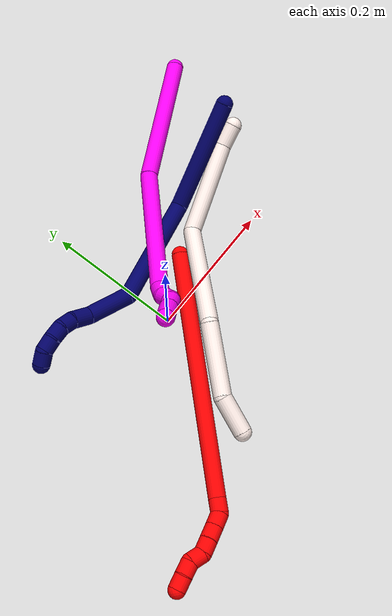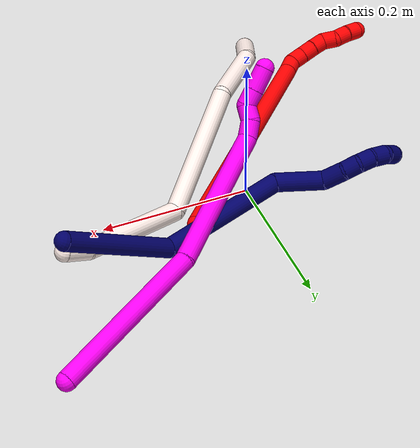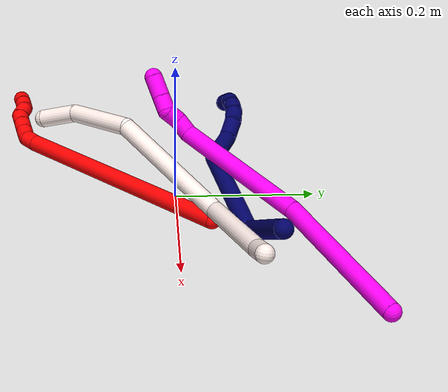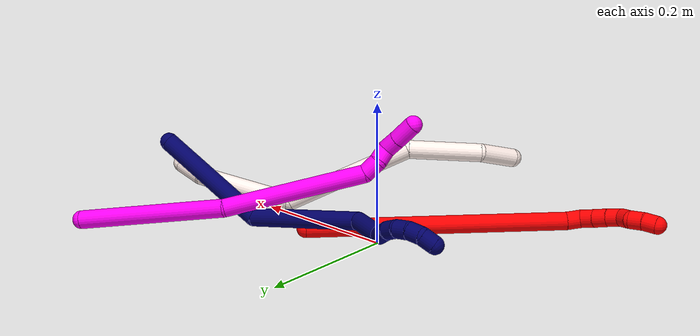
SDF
<sdf version="1.7">
 <world name="default">
  <model name="2">
   <static>0</static>
   <link name="2">
    <collision name="collision-cylinder-e_1_1_4">
     <pose>-0.006723 -0.006391 0.179255 0.035641 -0.037463 -0.000668</pose>
     <geometry><cylinder><radius>0.0125</radius><length>0.358989</length></cylinder></geometry>
     <surface>
      <friction><ode><mu>1.16</mu><mu2>1.16</mu2><slip1>0</slip1><slip2>0</slip2></ode></friction>
      <contact><ode><kp>1e+06</kp><kd>1</kd><max_vel>0</max_vel><min_depth>0.001</min_depth></ode></contact>
     </surface>
    </collision>
    <visual name="visual-cylinder-e_1_1_4">
     <pose>-0.006723 -0.006391 0.179255 0.035641 -0.037463 -0.000668</pose>
     <geometry><cylinder><radius>0.0125</radius><length>0.358989</length></cylinder></geometry>
     <material><ambient>1 0 0 1</ambient></material>
    </visual>
    <collision name="collision-cylinder-e_2_4_5">
     <pose>-0.015063 -0.012864 0.368669 0.007967 -0.157913 -0.00063</pose>
     <geometry><cylinder><radius>0.0125</radius><length>0.020577</length></cylinder></geometry>
     <surface>
      <friction><ode><mu>1.16</mu><mu2>1.16</mu2><slip1>0</slip1><slip2>0</slip2></ode></friction>
      <contact><ode><kp>1e+06</kp><kd>1</kd><max_vel>0</max_vel><min_depth>0.001</min_depth></ode></contact>
     </surface>
    </collision>
    <visual name="visual-cylinder-e_2_4_5">
     <pose>-0.015063 -0.012864 0.368669 0.007967 -0.157913 -0.00063</pose>
     <geometry><cylinder><radius>0.0125</radius><length>0.020577</length></cylinder></geometry>
     <material><ambient>1 0 0 1</ambient></material>
    </visual>
    <collision name="collision-cylinder-e_3_5_6">
     <pose>-0.019873 -0.017906 0.386927 0.549661 -0.324202 -0.092158</pose>
     <geometry><cylinder><radius>0.0125</radius><length>0.020036</length></cylinder></geometry>
     <surface>
      <friction><ode><mu>1.16</mu><mu2>1.16</mu2><slip1>0</slip1><slip2>0</slip2></ode></friction>
      <contact><ode><kp>1e+06</kp><kd>1</kd><max_vel>0</max_vel><min_depth>0.001</min_depth></ode></contact>
     </surface>
    </collision>
    <visual name="visual-cylinder-e_3_5_6">
     <pose>-0.019873 -0.017906 0.386927 0.549661 -0.324202 -0.092158</pose>
     <geometry><cylinder><radius>0.0125</radius><length>0.020036</length></cylinder></geometry>
     <material><ambient>1 0 0 1</ambient></material>
    </visual>
    <collision name="collision-cylinder-e_4_6_7">
     <pose>-0.026626 -0.027901 0.403121 0.556305 -0.35753 -0.103105</pose>
     <geometry><cylinder><radius>0.0125</radius><length>0.020355</length></cylinder></geometry>
     <surface>
      <friction><ode><mu>1.16</mu><mu2>1.16</mu2><slip1>0</slip1><slip2>0</slip2></ode></friction>
      <contact><ode><kp>1e+06</kp><kd>1</kd><max_vel>0</max_vel><min_depth>0.001</min_depth></ode></contact>
     </surface>
    </collision>
    <visual name="visual-cylinder-e_4_6_7">
     <pose>-0.026626 -0.027901 0.403121 0.556305 -0.35753 -0.103105</pose>
     <geometry><cylinder><radius>0.0125</radius><length>0.020355</length></cylinder></geometry>
     <material><ambient>1 0 0 1</ambient></material>
    </visual>
    <collision name="collision-cylinder-e_5_7_8">
     <pose>-0.033214 -0.038044 0.419276 0.565014 -0.307133 -0.089799</pose>
     <geometry><cylinder><radius>0.0125</radius><length>0.02002</length></cylinder></geometry>
     <surface>
      <friction><ode><mu>1.16</mu><mu2>1.16</mu2><slip1>0</slip1><slip2>0</slip2></ode></friction>
      <contact><ode><kp>1e+06</kp><kd>1</kd><max_vel>0</max_vel><min_depth>0.001</min_depth></ode></contact>
     </surface>
    </collision>
    <visual name="visual-cylinder-e_5_7_8">
     <pose>-0.033214 -0.038044 0.419276 0.565014 -0.307133 -0.089799</pose>
     <geometry><cylinder><radius>0.0125</radius><length>0.02002</length></cylinder></geometry>
     <material><ambient>1 0 0 1</ambient></material>
    </visual>
    <collision name="collision-cylinder-e_6_8_9">
     <pose>-0.039876 -0.051731 0.430984 1.16855 -0.371834 -0.247494</pose>
     <geometry><cylinder><radius>0.0125</radius><length>0.020012</length></cylinder></geometry>
     <surface>
      <friction><ode><mu>1.16</mu><mu2>1.16</mu2><slip1>0</slip1><slip2>0</slip2></ode></friction>
      <contact><ode><kp>1e+06</kp><kd>1</kd><max_vel>0</max_vel><min_depth>0.001</min_depth></ode></contact>
     </surface>
    </collision>
    <visual name="visual-cylinder-e_6_8_9">
     <pose>-0.039876 -0.051731 0.430984 1.16855 -0.371834 -0.247494</pose>
     <geometry><cylinder><radius>0.0125</radius><length>0.020012</length></cylinder></geometry>
     <material><ambient>1 0 0 1</ambient></material>
    </visual>
    <collision name="collision-cylinder-e_7_9_10">
     <pose>-0.045433 -0.066053 0.442594 0.624996 -0.193368 -0.062649</pose>
     <geometry><cylinder><radius>0.0125</radius><length>0.020004</length></cylinder></geometry>
     <surface>
      <friction><ode><mu>1.16</mu><mu2>1.16</mu2><slip1>0</slip1><slip2>0</slip2></ode></friction>
      <contact><ode><kp>1e+06</kp><kd>1</kd><max_vel>0</max_vel><min_depth>0.001</min_depth></ode></contact>
     </surface>
    </collision>
    <visual name="visual-cylinder-e_7_9_10">
     <pose>-0.045433 -0.066053 0.442594 0.624996 -0.193368 -0.062649</pose>
     <geometry><cylinder><radius>0.0125</radius><length>0.020004</length></cylinder></geometry>
     <material><ambient>1 0 0 1</ambient></material>
    </visual>
    <collision name="collision-cylinder-e_8_10_2">
     <pose>-0.047848 -0.077702 0.458612 0.632527 -0.04931 -0.01614</pose>
     <geometry><cylinder><radius>0.0125</radius><length>0.020006</length></cylinder></geometry>
     <surface>
      <friction><ode><mu>1.16</mu><mu2>1.16</mu2><slip1>0</slip1><slip2>0</slip2></ode></friction>
      <contact><ode><kp>1e+06</kp><kd>1</kd><max_vel>0</max_vel><min_depth>0.001</min_depth></ode></contact>
     </surface>
    </collision>
    <visual name="visual-cylinder-e_8_10_2">
     <pose>-0.047848 -0.077702 0.458612 0.632527 -0.04931 -0.01614</pose>
     <geometry><cylinder><radius>0.0125</radius><length>0.020006</length></cylinder></geometry>
     <material><ambient>1 0 0 1</ambient></material>
    </visual>
    <collision name="collision-sphere-2">
     <pose>-0.048341 -0.083609 0.46667 0 -0 0</pose>
     <geometry><sphere><radius>0.0125</radius></sphere></geometry>
     <surface>
      <friction><ode><mu>1.16</mu><mu2>1.16</mu2><slip1>0</slip1><slip2>0</slip2></ode></friction>
      <contact><ode><kp>1e+06</kp><kd>1</kd><max_vel>0</max_vel><min_depth>0.001</min_depth></ode></contact>
     </surface>
    </collision>
    <visual name="visual-sphere-2">
     <pose>-0.048341 -0.083609 0.46667 0 -0 0</pose>
     <geometry><sphere><radius>0.0125</radius></sphere></geometry>
     <material><ambient>1 0 0 1</ambient></material>
    </visual>
    <collision name="collision-sphere-10">
     <pose>-0.047355 -0.071796 0.450554 0 -0 0</pose>
     <geometry><sphere><radius>0.0125</radius></sphere></geometry>
     <surface>
      <friction><ode><mu>1.16</mu><mu2>1.16</mu2><slip1>0</slip1><slip2>0</slip2></ode></friction>
      <contact><ode><kp>1e+06</kp><kd>1</kd><max_vel>0</max_vel><min_depth>0.001</min_depth></ode></contact>
     </surface>
    </collision>
    <visual name="visual-sphere-10">
     <pose>-0.047355 -0.071796 0.450554 0 -0 0</pose>
     <geometry><sphere><radius>0.0125</radius></sphere></geometry>
     <material><ambient>1 0 0 1</ambient></material>
    </visual>
    <collision name="collision-sphere-9">
     <pose>-0.043511 -0.060309 0.434634 0 -0 0</pose>
     <geometry><sphere><radius>0.0125</radius></sphere></geometry>
     <surface>
      <friction><ode><mu>1.16</mu><mu2>1.16</mu2><slip1>0</slip1><slip2>0</slip2></ode></friction>
      <contact><ode><kp>1e+06</kp><kd>1</kd><max_vel>0</max_vel><min_depth>0.001</min_depth></ode></contact>
     </surface>
    </collision>
    <visual name="visual-sphere-9">
     <pose>-0.043511 -0.060309 0.434634 0 -0 0</pose>
     <geometry><sphere><radius>0.0125</radius></sphere></geometry>
     <material><ambient>1 0 0 1</ambient></material>
    </visual>
    <collision name="collision-sphere-4">
     <pose>-0.013445 -0.012783 0.358509 0 -0 0</pose>
     <geometry><sphere><radius>0.0125</radius></sphere></geometry>
     <surface>
      <friction><ode><mu>1.16</mu><mu2>1.16</mu2><slip1>0</slip1><slip2>0</slip2></ode></friction>
      <contact><ode><kp>1e+06</kp><kd>1</kd><max_vel>0</max_vel><min_depth>0.001</min_depth></ode></contact>
     </surface>
    </collision>
    <visual name="visual-sphere-4">
     <pose>-0.013445 -0.012783 0.358509 0 -0 0</pose>
     <geometry><sphere><radius>0.0125</radius></sphere></geometry>
     <material><ambient>1 0 0 1</ambient></material>
    </visual>
    <collision name="collision-sphere-1">
     <geometry><sphere><radius>0.0125</radius></sphere></geometry>
     <surface>
      <friction><ode><mu>1.16</mu><mu2>1.16</mu2><slip1>0</slip1><slip2>0</slip2></ode></friction>
      <contact><ode><kp>1e+06</kp><kd>1</kd><max_vel>0</max_vel><min_depth>0.001</min_depth></ode></contact>
     </surface>
    </collision>
    <visual name="visual-sphere-1">
     <geometry><sphere><radius>0.0125</radius></sphere></geometry>
     <material><ambient>1 0 0 1</ambient></material>
    </visual>
    <collision name="collision-sphere-8">
     <pose>-0.03624 -0.043153 0.427335 0 -0 0</pose>
     <geometry><sphere><radius>0.0125</radius></sphere></geometry>
     <surface>
      <friction><ode><mu>1.16</mu><mu2>1.16</mu2><slip1>0</slip1><slip2>0</slip2></ode></friction>
      <contact><ode><kp>1e+06</kp><kd>1</kd><max_vel>0</max_vel><min_depth>0.001</min_depth></ode></contact>
     </surface>
    </collision>
    <visual name="visual-sphere-8">
     <pose>-0.03624 -0.043153 0.427335 0 -0 0</pose>
     <geometry><sphere><radius>0.0125</radius></sphere></geometry>
     <material><ambient>1 0 0 1</ambient></material>
    </visual>
    <collision name="collision-sphere-5">
     <pose>-0.016681 -0.012945 0.378829 0 -0 0</pose>
     <geometry><sphere><radius>0.0125</radius></sphere></geometry>
     <surface>
      <friction><ode><mu>1.16</mu><mu2>1.16</mu2><slip1>0</slip1><slip2>0</slip2></ode></friction>
      <contact><ode><kp>1e+06</kp><kd>1</kd><max_vel>0</max_vel><min_depth>0.001</min_depth></ode></contact>
     </surface>
    </collision>
    <visual name="visual-sphere-5">
     <pose>-0.016681 -0.012945 0.378829 0 -0 0</pose>
     <geometry><sphere><radius>0.0125</radius></sphere></geometry>
     <material><ambient>1 0 0 1</ambient></material>
    </visual>
    <collision name="collision-sphere-6">
     <pose>-0.023064 -0.022866 0.395024 0 -0 0</pose>
     <geometry><sphere><radius>0.0125</radius></sphere></geometry>
     <surface>
      <friction><ode><mu>1.16</mu><mu2>1.16</mu2><slip1>0</slip1><slip2>0</slip2></ode></friction>
      <contact><ode><kp>1e+06</kp><kd>1</kd><max_vel>0</max_vel><min_depth>0.001</min_depth></ode></contact>
     </surface>
    </collision>
    <visual name="visual-sphere-6">
     <pose>-0.023064 -0.022866 0.395024 0 -0 0</pose>
     <geometry><sphere><radius>0.0125</radius></sphere></geometry>
     <material><ambient>1 0 0 1</ambient></material>
    </visual>
    <collision name="collision-sphere-7">
     <pose>-0.030187 -0.032935 0.411217 0 -0 0</pose>
     <geometry><sphere><radius>0.0125</radius></sphere></geometry>
     <surface>
      <friction><ode><mu>1.16</mu><mu2>1.16</mu2><slip1>0</slip1><slip2>0</slip2></ode></friction>
      <contact><ode><kp>1e+06</kp><kd>1</kd><max_vel>0</max_vel><min_depth>0.001</min_depth></ode></contact>
     </surface>
    </collision>
    <visual name="visual-sphere-7">
     <pose>-0.030187 -0.032935 0.411217 0 -0 0</pose>
     <geometry><sphere><radius>0.0125</radius></sphere></geometry>
     <material><ambient>1 0 0 1</ambient></material>
    </visual>
    <inertial>
     <pose>-0.013985 -0.016317 0.245885 0 -0 0</pose>
     <mass>0.5</mass>
     <inertia>
      <ixx>0.003869</ixx>
      <ixy>0</ixy>
      <ixz>0</ixz>
      <iyy>0.003865</iyy>
      <iyz>0</iyz>
      <izz>0.000327</izz>
     </inertia>
    </inertial>
   </link>
   <pose>0.088803 0.046941 0.011486 1.74738 1.39472 -0.546762</pose>
  </model>
  <model name="7">
   <static>0</static>
   <link name="7">
    <collision name="collision-cylinder-e_1_1_4">
     <pose>-0.00225 -0.014789 -0.079566 2.95782 -0.027795 -0.299409</pose>
     <geometry><cylinder><radius>0.0125</radius><length>0.16192</length></cylinder></geometry>
     <surface>
      <friction><ode><mu>1.16</mu><mu2>1.16</mu2><slip1>0</slip1><slip2>0</slip2></ode></friction>
      <contact><ode><kp>1e+06</kp><kd>1</kd><max_vel>0</max_vel><min_depth>0.001</min_depth></ode></contact>
     </surface>
    </collision>
    <visual name="visual-cylinder-e_1_1_4">
     <pose>-0.00225 -0.014789 -0.079566 2.95782 -0.027795 -0.299409</pose>
     <geometry><cylinder><radius>0.0125</radius><length>0.16192</length></cylinder></geometry>
     <material><ambient>0.003922 0 0.403922 1</ambient></material>
    </visual>
    <collision name="collision-cylinder-e_2_4_5">
     <pose>-0.055432 -0.060682 -0.216453 2.64442 -0.663031 -1.87078</pose>
     <geometry><cylinder><radius>0.0125</radius><length>0.165497</length></cylinder></geometry>
     <surface>
      <friction><ode><mu>1.16</mu><mu2>1.16</mu2><slip1>0</slip1><slip2>0</slip2></ode></friction>
      <contact><ode><kp>1e+06</kp><kd>1</kd><max_vel>0</max_vel><min_depth>0.001</min_depth></ode></contact>
     </surface>
    </collision>
    <visual name="visual-cylinder-e_2_4_5">
     <pose>-0.055432 -0.060682 -0.216453 2.64442 -0.663031 -1.87078</pose>
     <geometry><cylinder><radius>0.0125</radius><length>0.165497</length></cylinder></geometry>
     <material><ambient>0.003922 0 0.403922 1</ambient></material>
    </visual>
    <collision name="collision-cylinder-e_3_5_6">
     <pose>-0.126393 -0.084674 -0.296724 -2.84105 -0.694863 2.34953</pose>
     <geometry><cylinder><radius>0.0125</radius><length>0.06256</length></cylinder></geometry>
     <surface>
      <friction><ode><mu>1.16</mu><mu2>1.16</mu2><slip1>0</slip1><slip2>0</slip2></ode></friction>
      <contact><ode><kp>1e+06</kp><kd>1</kd><max_vel>0</max_vel><min_depth>0.001</min_depth></ode></contact>
     </surface>
    </collision>
    <visual name="visual-cylinder-e_3_5_6">
     <pose>-0.126393 -0.084674 -0.296724 -2.84105 -0.694863 2.34953</pose>
     <geometry><cylinder><radius>0.0125</radius><length>0.06256</length></cylinder></geometry>
     <material><ambient>0.003922 0 0.403922 1</ambient></material>
    </visual>
    <collision name="collision-cylinder-e_4_6_7">
     <pose>-0.160407 -0.075746 -0.324678 -2.79361 -1.20719 2.64233</pose>
     <geometry><cylinder><radius>0.0125</radius><length>0.029928</length></cylinder></geometry>
     <surface>
      <friction><ode><mu>1.16</mu><mu2>1.16</mu2><slip1>0</slip1><slip2>0</slip2></ode></friction>
      <contact><ode><kp>1e+06</kp><kd>1</kd><max_vel>0</max_vel><min_depth>0.001</min_depth></ode></contact>
     </surface>
    </collision>
    <visual name="visual-cylinder-e_4_6_7">
     <pose>-0.160407 -0.075746 -0.324678 -2.79361 -1.20719 2.64233</pose>
     <geometry><cylinder><radius>0.0125</radius><length>0.029928</length></cylinder></geometry>
     <material><ambient>0.003922 0 0.403922 1</ambient></material>
    </visual>
    <collision name="collision-cylinder-e_5_7_8">
     <pose>-0.182927 -0.074653 -0.334859 3.00299 -1.02119 -2.89502</pose>
     <geometry><cylinder><radius>0.0125</radius><length>0.020018</length></cylinder></geometry>
     <surface>
      <friction><ode><mu>1.16</mu><mu2>1.16</mu2><slip1>0</slip1><slip2>0</slip2></ode></friction>
      <contact><ode><kp>1e+06</kp><kd>1</kd><max_vel>0</max_vel><min_depth>0.001</min_depth></ode></contact>
     </surface>
    </collision>
    <visual name="visual-cylinder-e_5_7_8">
     <pose>-0.182927 -0.074653 -0.334859 3.00299 -1.02119 -2.89502</pose>
     <geometry><cylinder><radius>0.0125</radius><length>0.020018</length></cylinder></geometry>
     <material><ambient>0.003922 0 0.403922 1</ambient></material>
    </visual>
    <collision name="collision-cylinder-e_6_8_9">
     <pose>-0.197829 -0.077701 -0.347434 2.83697 -0.687457 -2.33134</pose>
     <geometry><cylinder><radius>0.0125</radius><length>0.020067</length></cylinder></geometry>
     <surface>
      <friction><ode><mu>1.16</mu><mu2>1.16</mu2><slip1>0</slip1><slip2>0</slip2></ode></friction>
      <contact><ode><kp>1e+06</kp><kd>1</kd><max_vel>0</max_vel><min_depth>0.001</min_depth></ode></contact>
     </surface>
    </collision>
    <visual name="visual-cylinder-e_6_8_9">
     <pose>-0.197829 -0.077701 -0.347434 2.83697 -0.687457 -2.33134</pose>
     <geometry><cylinder><radius>0.0125</radius><length>0.020067</length></cylinder></geometry>
     <material><ambient>0.003922 0 0.403922 1</ambient></material>
    </visual>
    <collision name="collision-cylinder-e_7_9_10">
     <pose>-0.208468 -0.082172 -0.363619 2.90215 -0.441237 -2.15692</pose>
     <geometry><cylinder><radius>0.0125</radius><length>0.020006</length></cylinder></geometry>
     <surface>
      <friction><ode><mu>1.16</mu><mu2>1.16</mu2><slip1>0</slip1><slip2>0</slip2></ode></friction>
      <contact><ode><kp>1e+06</kp><kd>1</kd><max_vel>0</max_vel><min_depth>0.001</min_depth></ode></contact>
     </surface>
    </collision>
    <visual name="visual-cylinder-e_7_9_10">
     <pose>-0.208468 -0.082172 -0.363619 2.90215 -0.441237 -2.15692</pose>
     <geometry><cylinder><radius>0.0125</radius><length>0.020006</length></cylinder></geometry>
     <material><ambient>0.003922 0 0.403922 1</ambient></material>
    </visual>
    <collision name="collision-cylinder-e_8_10_2">
     <pose>-0.212341 -0.087787 -0.381778 2.78701 0.039926 0.221953</pose>
     <geometry><cylinder><radius>0.0125</radius><length>0.020004</length></cylinder></geometry>
     <surface>
      <friction><ode><mu>1.16</mu><mu2>1.16</mu2><slip1>0</slip1><slip2>0</slip2></ode></friction>
      <contact><ode><kp>1e+06</kp><kd>1</kd><max_vel>0</max_vel><min_depth>0.001</min_depth></ode></contact>
     </surface>
    </collision>
    <visual name="visual-cylinder-e_8_10_2">
     <pose>-0.212341 -0.087787 -0.381778 2.78701 0.039926 0.221953</pose>
     <geometry><cylinder><radius>0.0125</radius><length>0.020004</length></cylinder></geometry>
     <material><ambient>0.003922 0 0.403922 1</ambient></material>
    </visual>
    <collision name="collision-sphere-2">
     <pose>-0.211942 -0.091257 -0.391151 0 -0 0</pose>
     <geometry><sphere><radius>0.0125</radius></sphere></geometry>
     <surface>
      <friction><ode><mu>1.16</mu><mu2>1.16</mu2><slip1>0</slip1><slip2>0</slip2></ode></friction>
      <contact><ode><kp>1e+06</kp><kd>1</kd><max_vel>0</max_vel><min_depth>0.001</min_depth></ode></contact>
     </surface>
    </collision>
    <visual name="visual-sphere-2">
     <pose>-0.211942 -0.091257 -0.391151 0 -0 0</pose>
     <geometry><sphere><radius>0.0125</radius></sphere></geometry>
     <material><ambient>0.003922 0 0.403922 1</ambient></material>
    </visual>
    <collision name="collision-sphere-10">
     <pose>-0.21274 -0.084318 -0.372406 0 -0 0</pose>
     <geometry><sphere><radius>0.0125</radius></sphere></geometry>
     <surface>
      <friction><ode><mu>1.16</mu><mu2>1.16</mu2><slip1>0</slip1><slip2>0</slip2></ode></friction>
      <contact><ode><kp>1e+06</kp><kd>1</kd><max_vel>0</max_vel><min_depth>0.001</min_depth></ode></contact>
     </surface>
    </collision>
    <visual name="visual-sphere-10">
     <pose>-0.21274 -0.084318 -0.372406 0 -0 0</pose>
     <geometry><sphere><radius>0.0125</radius></sphere></geometry>
     <material><ambient>0.003922 0 0.403922 1</ambient></material>
    </visual>
    <collision name="collision-sphere-9">
     <pose>-0.204196 -0.080027 -0.354832 0 -0 0</pose>
     <geometry><sphere><radius>0.0125</radius></sphere></geometry>
     <surface>
      <friction><ode><mu>1.16</mu><mu2>1.16</mu2><slip1>0</slip1><slip2>0</slip2></ode></friction>
      <contact><ode><kp>1e+06</kp><kd>1</kd><max_vel>0</max_vel><min_depth>0.001</min_depth></ode></contact>
     </surface>
    </collision>
    <visual name="visual-sphere-9">
     <pose>-0.204196 -0.080027 -0.354832 0 -0 0</pose>
     <geometry><sphere><radius>0.0125</radius></sphere></geometry>
     <material><ambient>0.003922 0 0.403922 1</ambient></material>
    </visual>
    <collision name="collision-sphere-4">
     <pose>-0.0045 -0.029578 -0.159132 0 -0 0</pose>
     <geometry><sphere><radius>0.0125</radius></sphere></geometry>
     <surface>
      <friction><ode><mu>1.16</mu><mu2>1.16</mu2><slip1>0</slip1><slip2>0</slip2></ode></friction>
      <contact><ode><kp>1e+06</kp><kd>1</kd><max_vel>0</max_vel><min_depth>0.001</min_depth></ode></contact>
     </surface>
    </collision>
    <visual name="visual-sphere-4">
     <pose>-0.0045 -0.029578 -0.159132 0 -0 0</pose>
     <geometry><sphere><radius>0.0125</radius></sphere></geometry>
     <material><ambient>0.003922 0 0.403922 1</ambient></material>
    </visual>
    <collision name="collision-sphere-1">
     <geometry><sphere><radius>0.0125</radius></sphere></geometry>
     <surface>
      <friction><ode><mu>1.16</mu><mu2>1.16</mu2><slip1>0</slip1><slip2>0</slip2></ode></friction>
      <contact><ode><kp>1e+06</kp><kd>1</kd><max_vel>0</max_vel><min_depth>0.001</min_depth></ode></contact>
     </surface>
    </collision>
    <visual name="visual-sphere-1">
     <geometry><sphere><radius>0.0125</radius></sphere></geometry>
     <material><ambient>0.003922 0 0.403922 1</ambient></material>
    </visual>
    <collision name="collision-sphere-8">
     <pose>-0.191462 -0.075376 -0.340037 0 -0 0</pose>
     <geometry><sphere><radius>0.0125</radius></sphere></geometry>
     <surface>
      <friction><ode><mu>1.16</mu><mu2>1.16</mu2><slip1>0</slip1><slip2>0</slip2></ode></friction>
      <contact><ode><kp>1e+06</kp><kd>1</kd><max_vel>0</max_vel><min_depth>0.001</min_depth></ode></contact>
     </surface>
    </collision>
    <visual name="visual-sphere-8">
     <pose>-0.191462 -0.075376 -0.340037 0 -0 0</pose>
     <geometry><sphere><radius>0.0125</radius></sphere></geometry>
     <material><ambient>0.003922 0 0.403922 1</ambient></material>
    </visual>
    <collision name="collision-sphere-5">
     <pose>-0.106365 -0.091787 -0.273774 0 -0 0</pose>
     <geometry><sphere><radius>0.0125</radius></sphere></geometry>
     <surface>
      <friction><ode><mu>1.16</mu><mu2>1.16</mu2><slip1>0</slip1><slip2>0</slip2></ode></friction>
      <contact><ode><kp>1e+06</kp><kd>1</kd><max_vel>0</max_vel><min_depth>0.001</min_depth></ode></contact>
     </surface>
    </collision>
    <visual name="visual-sphere-5">
     <pose>-0.106365 -0.091787 -0.273774 0 -0 0</pose>
     <geometry><sphere><radius>0.0125</radius></sphere></geometry>
     <material><ambient>0.003922 0 0.403922 1</ambient></material>
    </visual>
    <collision name="collision-sphere-6">
     <pose>-0.146421 -0.077561 -0.319675 0 -0 0</pose>
     <geometry><sphere><radius>0.0125</radius></sphere></geometry>
     <surface>
      <friction><ode><mu>1.16</mu><mu2>1.16</mu2><slip1>0</slip1><slip2>0</slip2></ode></friction>
      <contact><ode><kp>1e+06</kp><kd>1</kd><max_vel>0</max_vel><min_depth>0.001</min_depth></ode></contact>
     </surface>
    </collision>
    <visual name="visual-sphere-6">
     <pose>-0.146421 -0.077561 -0.319675 0 -0 0</pose>
     <geometry><sphere><radius>0.0125</radius></sphere></geometry>
     <material><ambient>0.003922 0 0.403922 1</ambient></material>
    </visual>
    <collision name="collision-sphere-7">
     <pose>-0.174392 -0.073931 -0.329681 0 -0 0</pose>
     <geometry><sphere><radius>0.0125</radius></sphere></geometry>
     <surface>
      <friction><ode><mu>1.16</mu><mu2>1.16</mu2><slip1>0</slip1><slip2>0</slip2></ode></friction>
      <contact><ode><kp>1e+06</kp><kd>1</kd><max_vel>0</max_vel><min_depth>0.001</min_depth></ode></contact>
     </surface>
    </collision>
    <visual name="visual-sphere-7">
     <pose>-0.174392 -0.073931 -0.329681 0 -0 0</pose>
     <geometry><sphere><radius>0.0125</radius></sphere></geometry>
     <material><ambient>0.003922 0 0.403922 1</ambient></material>
    </visual>
    <inertial>
     <pose>-0.076592 -0.05291 -0.211145 0 -0 0</pose>
     <mass>0.5</mass>
     <inertia>
      <ixx>-0.00016</ixx>
      <ixy>0</ixy>
      <ixz>0</ixz>
      <iyy>-0.000498</iyy>
      <iyz>0</iyz>
      <izz>0.000442</izz>
     </inertia>
    </inertial>
   </link>
   <pose>0.280164 0.116796 0.109931 -0.297013 0.926148 -0.386349</pose>
  </model>
  <model name="10">
   <static>0</static>
   <link name="10">
    <collision name="collision-cylinder-e_1_1_4">
     <pose>-0.085674 -0.058853 0.006232 1.4653 -0.966282 -0.88198</pose>
     <geometry><cylinder><radius>0.0125</radius><length>0.208255</length></cylinder></geometry>
     <surface>
      <friction><ode><mu>1.16</mu><mu2>1.16</mu2><slip1>0</slip1><slip2>0</slip2></ode></friction>
      <contact><ode><kp>1e+06</kp><kd>1</kd><max_vel>0</max_vel><min_depth>0.001</min_depth></ode></contact>
     </surface>
    </collision>
    <visual name="visual-cylinder-e_1_1_4">
     <pose>-0.085674 -0.058853 0.006232 1.4653 -0.966282 -0.88198</pose>
     <geometry><cylinder><radius>0.0125</radius><length>0.208255</length></cylinder></geometry>
     <material><ambient>1 0 0.964706 1</ambient></material>
    </visual>
    <collision name="collision-cylinder-e_2_4_5">
     <pose>-0.262154 -0.152068 0.004725 1.79232 -1.20077 -1.41601</pose>
     <geometry><cylinder><radius>0.0125</radius><length>0.194797</length></cylinder></geometry>
     <surface>
      <friction><ode><mu>1.16</mu><mu2>1.16</mu2><slip1>0</slip1><slip2>0</slip2></ode></friction>
      <contact><ode><kp>1e+06</kp><kd>1</kd><max_vel>0</max_vel><min_depth>0.001</min_depth></ode></contact>
     </surface>
    </collision>
    <visual name="visual-cylinder-e_2_4_5">
     <pose>-0.262154 -0.152068 0.004725 1.79232 -1.20077 -1.41601</pose>
     <geometry><cylinder><radius>0.0125</radius><length>0.194797</length></cylinder></geometry>
     <material><ambient>1 0 0.964706 1</ambient></material>
    </visual>
    <collision name="collision-cylinder-e_3_5_6">
     <pose>-0.361916 -0.19018 -0.009514 2.61836 -0.873356 -2.0999</pose>
     <geometry><cylinder><radius>0.0125</radius><length>0.023367</length></cylinder></geometry>
     <surface>
      <friction><ode><mu>1.16</mu><mu2>1.16</mu2><slip1>0</slip1><slip2>0</slip2></ode></friction>
      <contact><ode><kp>1e+06</kp><kd>1</kd><max_vel>0</max_vel><min_depth>0.001</min_depth></ode></contact>
     </surface>
    </collision>
    <visual name="visual-cylinder-e_3_5_6">
     <pose>-0.361916 -0.19018 -0.009514 2.61836 -0.873356 -2.0999</pose>
     <geometry><cylinder><radius>0.0125</radius><length>0.023367</length></cylinder></geometry>
     <material><ambient>1 0 0.964706 1</ambient></material>
    </visual>
    <collision name="collision-cylinder-e_4_6_7">
     <pose>-0.378263 -0.192866 -0.023169 -2.99401 -0.796206 2.79358</pose>
     <geometry><cylinder><radius>0.0125</radius><length>0.020683</length></cylinder></geometry>
     <surface>
      <friction><ode><mu>1.16</mu><mu2>1.16</mu2><slip1>0</slip1><slip2>0</slip2></ode></friction>
      <contact><ode><kp>1e+06</kp><kd>1</kd><max_vel>0</max_vel><min_depth>0.001</min_depth></ode></contact>
     </surface>
    </collision>
    <visual name="visual-cylinder-e_4_6_7">
     <pose>-0.378263 -0.192866 -0.023169 -2.99401 -0.796206 2.79358</pose>
     <geometry><cylinder><radius>0.0125</radius><length>0.020683</length></cylinder></geometry>
     <material><ambient>1 0 0.964706 1</ambient></material>
    </visual>
    <collision name="collision-cylinder-e_5_7_8">
     <pose>-0.392372 -0.198395 -0.035655 2.25087 -0.670102 -1.26038</pose>
     <geometry><cylinder><radius>0.0125</radius><length>0.021635</length></cylinder></geometry>
     <surface>
      <friction><ode><mu>1.16</mu><mu2>1.16</mu2><slip1>0</slip1><slip2>0</slip2></ode></friction>
      <contact><ode><kp>1e+06</kp><kd>1</kd><max_vel>0</max_vel><min_depth>0.001</min_depth></ode></contact>
     </surface>
    </collision>
    <visual name="visual-cylinder-e_5_7_8">
     <pose>-0.392372 -0.198395 -0.035655 2.25087 -0.670102 -1.26038</pose>
     <geometry><cylinder><radius>0.0125</radius><length>0.021635</length></cylinder></geometry>
     <material><ambient>1 0 0.964706 1</ambient></material>
    </visual>
    <collision name="collision-cylinder-e_6_8_2">
     <pose>-0.408639 -0.214266 -0.049176 2.29393 -0.657108 -1.29415</pose>
     <geometry><cylinder><radius>0.0125</radius><length>0.031262</length></cylinder></geometry>
     <surface>
      <friction><ode><mu>1.16</mu><mu2>1.16</mu2><slip1>0</slip1><slip2>0</slip2></ode></friction>
      <contact><ode><kp>1e+06</kp><kd>1</kd><max_vel>0</max_vel><min_depth>0.001</min_depth></ode></contact>
     </surface>
    </collision>
    <visual name="visual-cylinder-e_6_8_2">
     <pose>-0.408639 -0.214266 -0.049176 2.29393 -0.657108 -1.29415</pose>
     <geometry><cylinder><radius>0.0125</radius><length>0.031262</length></cylinder></geometry>
     <material><ambient>1 0 0.964706 1</ambient></material>
    </visual>
    <collision name="collision-sphere-2">
     <pose>-0.418187 -0.223544 -0.057366 0 -0 0</pose>
     <geometry><sphere><radius>0.0125</radius></sphere></geometry>
     <surface>
      <friction><ode><mu>1.16</mu><mu2>1.16</mu2><slip1>0</slip1><slip2>0</slip2></ode></friction>
      <contact><ode><kp>1e+06</kp><kd>1</kd><max_vel>0</max_vel><min_depth>0.001</min_depth></ode></contact>
     </surface>
    </collision>
    <visual name="visual-sphere-2">
     <pose>-0.418187 -0.223544 -0.057366 0 -0 0</pose>
     <geometry><sphere><radius>0.0125</radius></sphere></geometry>
     <material><ambient>1 0 0.964706 1</ambient></material>
    </visual>
    <collision name="collision-sphere-4">
     <pose>-0.171348 -0.117706 0.012464 0 -0 0</pose>
     <geometry><sphere><radius>0.0125</radius></sphere></geometry>
     <surface>
      <friction><ode><mu>1.16</mu><mu2>1.16</mu2><slip1>0</slip1><slip2>0</slip2></ode></friction>
      <contact><ode><kp>1e+06</kp><kd>1</kd><max_vel>0</max_vel><min_depth>0.001</min_depth></ode></contact>
     </surface>
    </collision>
    <visual name="visual-sphere-4">
     <pose>-0.171348 -0.117706 0.012464 0 -0 0</pose>
     <geometry><sphere><radius>0.0125</radius></sphere></geometry>
     <material><ambient>1 0 0.964706 1</ambient></material>
    </visual>
    <collision name="collision-sphere-1">
     <geometry><sphere><radius>0.0125</radius></sphere></geometry>
     <surface>
      <friction><ode><mu>1.16</mu><mu2>1.16</mu2><slip1>0</slip1><slip2>0</slip2></ode></friction>
      <contact><ode><kp>1e+06</kp><kd>1</kd><max_vel>0</max_vel><min_depth>0.001</min_depth></ode></contact>
     </surface>
    </collision>
    <visual name="visual-sphere-1">
     <geometry><sphere><radius>0.0125</radius></sphere></geometry>
     <material><ambient>1 0 0.964706 1</ambient></material>
    </visual>
    <collision name="collision-sphere-8">
     <pose>-0.399091 -0.204987 -0.040987 0 -0 0</pose>
     <geometry><sphere><radius>0.0125</radius></sphere></geometry>
     <surface>
      <friction><ode><mu>1.16</mu><mu2>1.16</mu2><slip1>0</slip1><slip2>0</slip2></ode></friction>
      <contact><ode><kp>1e+06</kp><kd>1</kd><max_vel>0</max_vel><min_depth>0.001</min_depth></ode></contact>
     </surface>
    </collision>
    <visual name="visual-sphere-8">
     <pose>-0.399091 -0.204987 -0.040987 0 -0 0</pose>
     <geometry><sphere><radius>0.0125</radius></sphere></geometry>
     <material><ambient>1 0 0.964706 1</ambient></material>
    </visual>
    <collision name="collision-sphere-5">
     <pose>-0.352961 -0.186431 -0.003014 0 -0 0</pose>
     <geometry><sphere><radius>0.0125</radius></sphere></geometry>
     <surface>
      <friction><ode><mu>1.16</mu><mu2>1.16</mu2><slip1>0</slip1><slip2>0</slip2></ode></friction>
      <contact><ode><kp>1e+06</kp><kd>1</kd><max_vel>0</max_vel><min_depth>0.001</min_depth></ode></contact>
     </surface>
    </collision>
    <visual name="visual-sphere-5">
     <pose>-0.352961 -0.186431 -0.003014 0 -0 0</pose>
     <geometry><sphere><radius>0.0125</radius></sphere></geometry>
     <material><ambient>1 0 0.964706 1</ambient></material>
    </visual>
    <collision name="collision-sphere-6">
     <pose>-0.370871 -0.19393 -0.016014 0 -0 0</pose>
     <geometry><sphere><radius>0.0125</radius></sphere></geometry>
     <surface>
      <friction><ode><mu>1.16</mu><mu2>1.16</mu2><slip1>0</slip1><slip2>0</slip2></ode></friction>
      <contact><ode><kp>1e+06</kp><kd>1</kd><max_vel>0</max_vel><min_depth>0.001</min_depth></ode></contact>
     </surface>
    </collision>
    <visual name="visual-sphere-6">
     <pose>-0.370871 -0.19393 -0.016014 0 -0 0</pose>
     <geometry><sphere><radius>0.0125</radius></sphere></geometry>
     <material><ambient>1 0 0.964706 1</ambient></material>
    </visual>
    <collision name="collision-sphere-7">
     <pose>-0.385654 -0.191802 -0.030323 0 -0 0</pose>
     <geometry><sphere><radius>0.0125</radius></sphere></geometry>
     <surface>
      <friction><ode><mu>1.16</mu><mu2>1.16</mu2><slip1>0</slip1><slip2>0</slip2></ode></friction>
      <contact><ode><kp>1e+06</kp><kd>1</kd><max_vel>0</max_vel><min_depth>0.001</min_depth></ode></contact>
     </surface>
    </collision>
    <visual name="visual-sphere-7">
     <pose>-0.385654 -0.191802 -0.030323 0 -0 0</pose>
     <geometry><sphere><radius>0.0125</radius></sphere></geometry>
     <material><ambient>1 0 0.964706 1</ambient></material>
    </visual>
    <inertial>
     <pose>-0.212907 -0.122606 -0.001584 0 -0 0</pose>
     <mass>0.5</mass>
     <inertia>
      <ixx>-0.000285</ixx>
      <ixy>0</ixy>
      <ixz>0</ixz>
      <iyy>0.000496</iyy>
      <iyz>0</iyz>
      <izz>0.001863</izz>
     </inertia>
    </inertial>
   </link>
   <pose>0.324642 0.243217 0.020188 -2.79582 0.051792 1.07998</pose>
  </model>
  <model name="11">
   <static>0</static>
   <link name="11">
    <collision name="collision-cylinder-e_1_1_4">
     <pose>-0.011351 0.012177 -0.002119 -1.74307 -0.742903 0.8675</pose>
     <geometry><cylinder><radius>0.0125</radius><length>0.033563</length></cylinder></geometry>
     <surface>
      <friction><ode><mu>1.16</mu><mu2>1.16</mu2><slip1>0</slip1><slip2>0</slip2></ode></friction>
      <contact><ode><kp>1e+06</kp><kd>1</kd><max_vel>0</max_vel><min_depth>0.001</min_depth></ode></contact>
     </surface>
    </collision>
    <visual name="visual-cylinder-e_1_1_4">
     <pose>-0.011351 0.012177 -0.002119 -1.74307 -0.742903 0.8675</pose>
     <geometry><cylinder><radius>0.0125</radius><length>0.033563</length></cylinder></geometry>
     <material><ambient>1 0.933333 0.909804 1</ambient></material>
    </visual>
    <collision name="collision-cylinder-e_2_4_5">
     <pose>-0.07843 0.063002 0.000584 -1.44668 -0.960803 0.862519</pose>
     <geometry><cylinder><radius>0.0125</radius><length>0.135977</length></cylinder></geometry>
     <surface>
      <friction><ode><mu>1.16</mu><mu2>1.16</mu2><slip1>0</slip1><slip2>0</slip2></ode></friction>
      <contact><ode><kp>1e+06</kp><kd>1</kd><max_vel>0</max_vel><min_depth>0.001</min_depth></ode></contact>
     </surface>
    </collision>
    <visual name="visual-cylinder-e_2_4_5">
     <pose>-0.07843 0.063002 0.000584 -1.44668 -0.960803 0.862519</pose>
     <geometry><cylinder><radius>0.0125</radius><length>0.135977</length></cylinder></geometry>
     <material><ambient>1 0.933333 0.909804 1</ambient></material>
    </visual>
    <collision name="collision-cylinder-e_3_5_6">
     <pose>-0.213132 0.100241 0.04514 0.035457 -1.1044 -0.021847</pose>
     <geometry><cylinder><radius>0.0125</radius><length>0.176838</length></cylinder></geometry>
     <surface>
      <friction><ode><mu>1.16</mu><mu2>1.16</mu2><slip1>0</slip1><slip2>0</slip2></ode></friction>
      <contact><ode><kp>1e+06</kp><kd>1</kd><max_vel>0</max_vel><min_depth>0.001</min_depth></ode></contact>
     </surface>
    </collision>
    <visual name="visual-cylinder-e_3_5_6">
     <pose>-0.213132 0.100241 0.04514 0.035457 -1.1044 -0.021847</pose>
     <geometry><cylinder><radius>0.0125</radius><length>0.176838</length></cylinder></geometry>
     <material><ambient>1 0.933333 0.909804 1</ambient></material>
    </visual>
    <collision name="collision-cylinder-e_4_6_7">
     <pose>-0.342062 0.104401 0.083773 -1.76615 -1.45763 1.65391</pose>
     <geometry><cylinder><radius>0.0125</radius><length>0.100552</length></cylinder></geometry>
     <surface>
      <friction><ode><mu>1.16</mu><mu2>1.16</mu2><slip1>0</slip1><slip2>0</slip2></ode></friction>
      <contact><ode><kp>1e+06</kp><kd>1</kd><max_vel>0</max_vel><min_depth>0.001</min_depth></ode></contact>
     </surface>
    </collision>
    <visual name="visual-cylinder-e_4_6_7">
     <pose>-0.342062 0.104401 0.083773 -1.76615 -1.45763 1.65391</pose>
     <geometry><cylinder><radius>0.0125</radius><length>0.100552</length></cylinder></geometry>
     <material><ambient>1 0.933333 0.909804 1</ambient></material>
    </visual>
    <collision name="collision-cylinder-e_5_7_2">
     <pose>-0.416611 0.105505 0.073766 2.67682 -1.18597 -2.46612</pose>
     <geometry><cylinder><radius>0.0125</radius><length>0.05307</length></cylinder></geometry>
     <surface>
      <friction><ode><mu>1.16</mu><mu2>1.16</mu2><slip1>0</slip1><slip2>0</slip2></ode></friction>
      <contact><ode><kp>1e+06</kp><kd>1</kd><max_vel>0</max_vel><min_depth>0.001</min_depth></ode></contact>
     </surface>
    </collision>
    <visual name="visual-cylinder-e_5_7_2">
     <pose>-0.416611 0.105505 0.073766 2.67682 -1.18597 -2.46612</pose>
     <geometry><cylinder><radius>0.0125</radius><length>0.05307</length></cylinder></geometry>
     <material><ambient>1 0.933333 0.909804 1</ambient></material>
    </visual>
    <collision name="collision-sphere-2">
     <pose>-0.441205 0.10104 0.064861 0 -0 0</pose>
     <geometry><sphere><radius>0.0125</radius></sphere></geometry>
     <surface>
      <friction><ode><mu>1.16</mu><mu2>1.16</mu2><slip1>0</slip1><slip2>0</slip2></ode></friction>
      <contact><ode><kp>1e+06</kp><kd>1</kd><max_vel>0</max_vel><min_depth>0.001</min_depth></ode></contact>
     </surface>
    </collision>
    <visual name="visual-sphere-2">
     <pose>-0.441205 0.10104 0.064861 0 -0 0</pose>
     <geometry><sphere><radius>0.0125</radius></sphere></geometry>
     <material><ambient>1 0.933333 0.909804 1</ambient></material>
    </visual>
    <collision name="collision-sphere-7">
     <pose>-0.392016 0.10997 0.082671 0 -0 0</pose>
     <geometry><sphere><radius>0.0125</radius></sphere></geometry>
     <surface>
      <friction><ode><mu>1.16</mu><mu2>1.16</mu2><slip1>0</slip1><slip2>0</slip2></ode></friction>
      <contact><ode><kp>1e+06</kp><kd>1</kd><max_vel>0</max_vel><min_depth>0.001</min_depth></ode></contact>
     </surface>
    </collision>
    <visual name="visual-sphere-7">
     <pose>-0.392016 0.10997 0.082671 0 -0 0</pose>
     <geometry><sphere><radius>0.0125</radius></sphere></geometry>
     <material><ambient>1 0.933333 0.909804 1</ambient></material>
    </visual>
    <collision name="collision-sphere-6">
     <pose>-0.292107 0.098832 0.084875 0 -0 0</pose>
     <geometry><sphere><radius>0.0125</radius></sphere></geometry>
     <surface>
      <friction><ode><mu>1.16</mu><mu2>1.16</mu2><slip1>0</slip1><slip2>0</slip2></ode></friction>
      <contact><ode><kp>1e+06</kp><kd>1</kd><max_vel>0</max_vel><min_depth>0.001</min_depth></ode></contact>
     </surface>
    </collision>
    <visual name="visual-sphere-6">
     <pose>-0.292107 0.098832 0.084875 0 -0 0</pose>
     <geometry><sphere><radius>0.0125</radius></sphere></geometry>
     <material><ambient>1 0.933333 0.909804 1</ambient></material>
    </visual>
    <collision name="collision-sphere-5">
     <pose>-0.134157 0.10165 0.005406 0 -0 0</pose>
     <geometry><sphere><radius>0.0125</radius></sphere></geometry>
     <surface>
      <friction><ode><mu>1.16</mu><mu2>1.16</mu2><slip1>0</slip1><slip2>0</slip2></ode></friction>
      <contact><ode><kp>1e+06</kp><kd>1</kd><max_vel>0</max_vel><min_depth>0.001</min_depth></ode></contact>
     </surface>
    </collision>
    <visual name="visual-sphere-5">
     <pose>-0.134157 0.10165 0.005406 0 -0 0</pose>
     <geometry><sphere><radius>0.0125</radius></sphere></geometry>
     <material><ambient>1 0.933333 0.909804 1</ambient></material>
    </visual>
    <collision name="collision-sphere-1">
     <geometry><sphere><radius>0.0125</radius></sphere></geometry>
     <surface>
      <friction><ode><mu>1.16</mu><mu2>1.16</mu2><slip1>0</slip1><slip2>0</slip2></ode></friction>
      <contact><ode><kp>1e+06</kp><kd>1</kd><max_vel>0</max_vel><min_depth>0.001</min_depth></ode></contact>
     </surface>
    </collision>
    <visual name="visual-sphere-1">
     <geometry><sphere><radius>0.0125</radius></sphere></geometry>
     <material><ambient>1 0.933333 0.909804 1</ambient></material>
    </visual>
    <collision name="collision-sphere-4">
     <pose>-0.022703 0.024353 -0.004238 0 -0 0</pose>
     <geometry><sphere><radius>0.0125</radius></sphere></geometry>
     <surface>
      <friction><ode><mu>1.16</mu><mu2>1.16</mu2><slip1>0</slip1><slip2>0</slip2></ode></friction>
      <contact><ode><kp>1e+06</kp><kd>1</kd><max_vel>0</max_vel><min_depth>0.001</min_depth></ode></contact>
     </surface>
    </collision>
    <visual name="visual-sphere-4">
     <pose>-0.022703 0.024353 -0.004238 0 -0 0</pose>
     <geometry><sphere><radius>0.0125</radius></sphere></geometry>
     <material><ambient>1 0.933333 0.909804 1</ambient></material>
    </visual>
    <inertial>
     <pose>-0.21048 0.085598 0.040658 0 -0 0</pose>
     <mass>0.5</mass>
     <inertia>
      <ixx>0.000351</ixx>
      <ixy>0</ixy>
      <ixz>0</ixz>
      <iyy>0.000827</iyy>
      <iyz>0</iyz>
      <izz>0.000578</izz>
     </inertia>
    </inertial>
   </link>
   <pose>0.276458 0.096342 0.073857 -0.301787 -0.034075 0.93369</pose>
  </model>
 </world>
</sdf>
